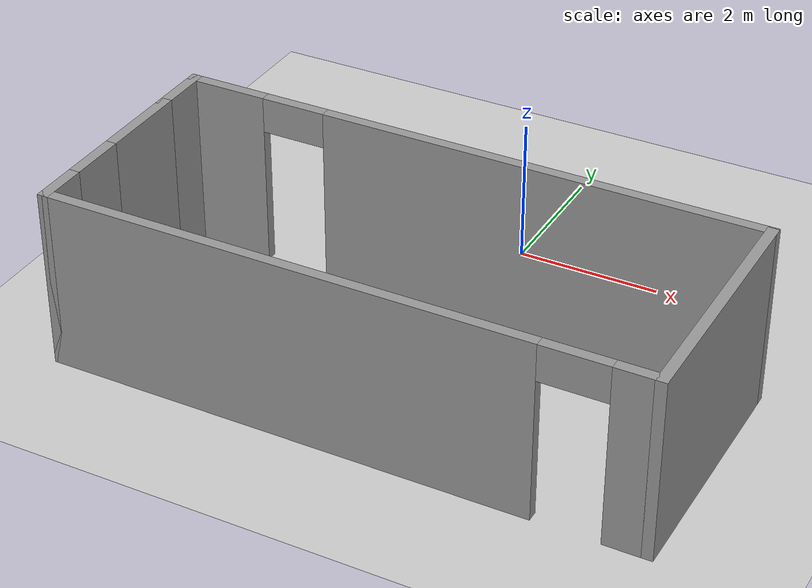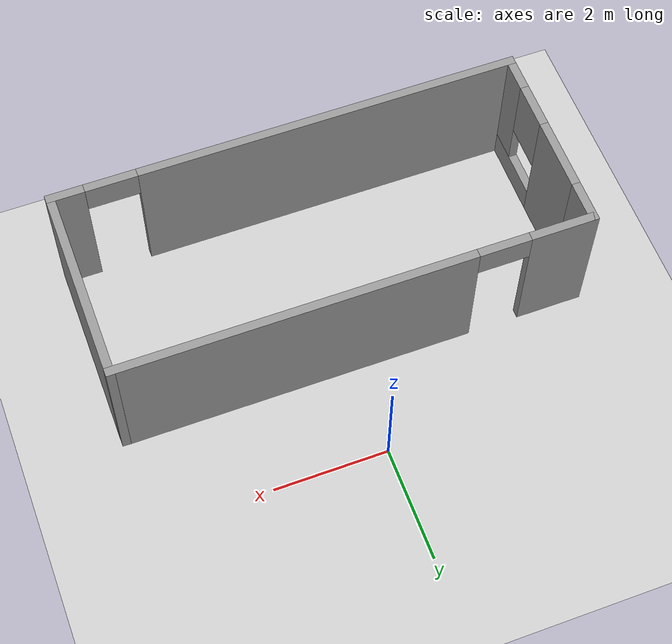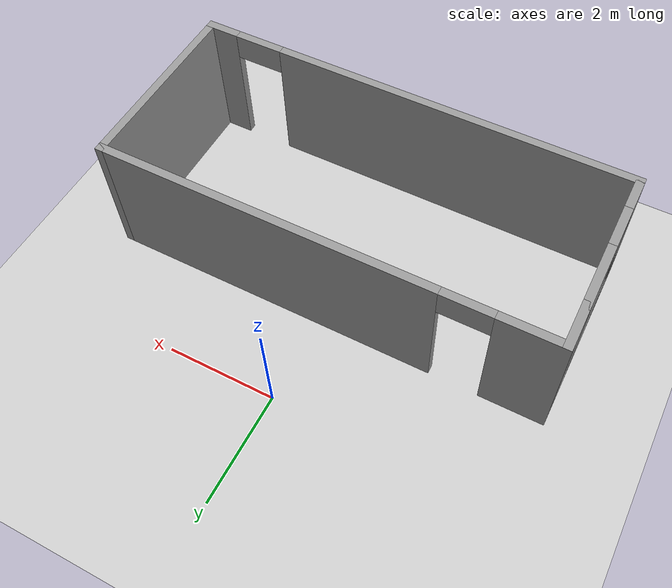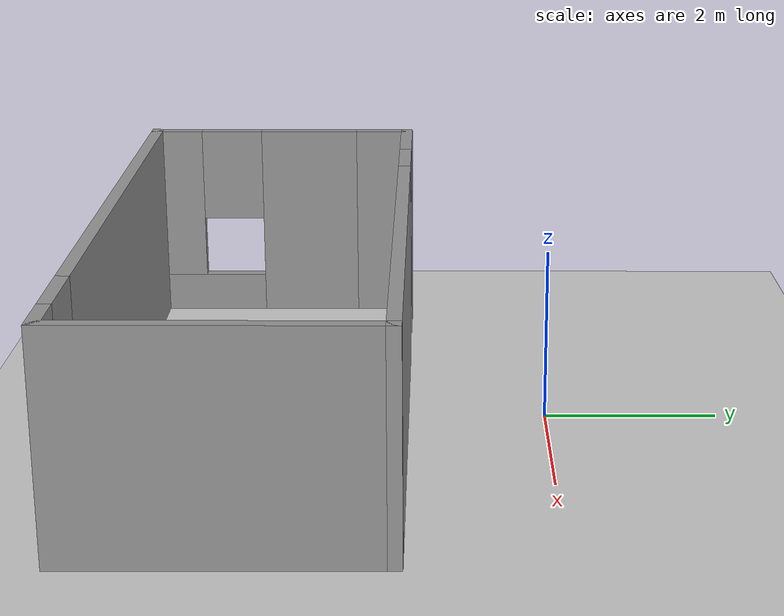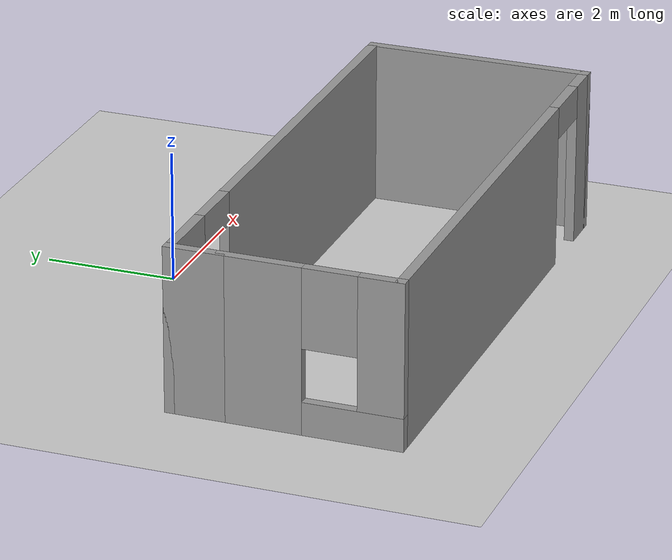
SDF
<sdf version="1.7">
 <world name="default">
  <light name="sun" type="directional">
   <pose>0 0 10 0 -0 0</pose>
   <diffuse>0.8 0.8 0.8 1</diffuse>
   <specular>0.2 0.2 0.2 1</specular>
   <attenuation>
    <range>1000</range>
    <constant>0.9</constant>
    <linear>0.01</linear>
    <quadratic>0.001</quadratic>
   </attenuation>
   <direction>-0.5 0.1 -0.9</direction>
   <spot><inner_angle>0</inner_angle><outer_angle>0</outer_angle><falloff>0</falloff></spot>
  </light>
  <model name="ground_plane">
   <static>1</static>
   <link name="link">
    <collision name="collision">
     <geometry><plane><normal>0 0 1</normal><size>100 100</size></plane></geometry>
     <surface>
      <contact><collide_bitmask>65535</collide_bitmask></contact>
      <friction><ode><mu>100</mu><mu2>50</mu2></ode></friction>
     </surface>
    </collision>
    <visual name="visual">
     <cast_shadows>0</cast_shadows>
     <geometry><plane><normal>0 0 1</normal><size>100 100</size></plane></geometry>
     <material>
      <script><uri>file://media/materials/scripts/gazebo.material</uri><name>Gazebo/Grey</name></script>
     </material>
    </visual>
   </link>
  </model>
  <gravity>0 0 -9.8</gravity>
  <magnetic_field>6e-06 2.3e-05 -4.2e-05</magnetic_field>
  <atmosphere type="adiabatic"/>
  <physics type="ode">
   <max_step_size>0.001</max_step_size>
   <real_time_factor>1</real_time_factor>
   <real_time_update_rate>1000</real_time_update_rate>
  </physics>
  <scene><ambient>0.4 0.4 0.4 1</ambient><background>0.7 0.7 0.7 1</background><shadows>1</shadows></scene>
  <audio><device>default</device></audio>
  <spherical_coordinates>
   <surface_model>EARTH_WGS84</surface_model>
   <latitude_deg>0</latitude_deg>
   <longitude_deg>0</longitude_deg>
   <elevation>0</elevation>
   <heading_deg>0</heading_deg>
  </spherical_coordinates>
  <model name="test_world">
   <pose>-0.05 -2.5475 0 0 -0 0</pose>
   <link name="Wall_0">
    <pose>-4.05 -1.1725 0 0 -0 -1.5708</pose>
    <visual name="Wall_0_Visual_0">
     <pose>-0.7375 0 1.25 0 -0 0</pose>
     <geometry><box><size>1.275 0.15 2.5</size></box></geometry>
     <material>
      <script><uri>file://media/materials/scripts/gazebo.material</uri><name>Gazebo/Grey</name></script>
      <ambient>1 1 1 1</ambient>
     </material>
     <meta><layer>0</layer></meta>
    </visual>
    <collision name="Wall_0_Collision_0">
     <geometry><box><size>1.275 0.15 2.5</size></box></geometry>
     <pose>-0.7375 0 1.25 0 -0 0</pose>
    </collision>
    <visual name="Wall_0_Visual_1">
     <pose>0.6375 0 0.25 0 -0 0</pose>
     <geometry><box><size>1.475 0.15 0.5</size></box></geometry>
     <material>
      <script><uri>file://media/materials/scripts/gazebo.material</uri><name>Gazebo/Grey</name></script>
      <ambient>1 1 1 1</ambient>
     </material>
     <meta><layer>0</layer></meta>
    </visual>
    <collision name="Wall_0_Collision_1">
     <geometry><box><size>1.475 0.15 0.5</size></box></geometry>
     <pose>0.6375 0 0.25 0 -0 0</pose>
    </collision>
    <visual name="Wall_0_Visual_2">
     <pose>1.0375 0 1.5 0 -0 0</pose>
     <geometry><box><size>0.675 0.15 2</size></box></geometry>
     <material>
      <script><uri>file://media/materials/scripts/gazebo.material</uri><name>Gazebo/Grey</name></script>
      <ambient>1 1 1 1</ambient>
     </material>
     <meta><layer>0</layer></meta>
    </visual>
    <collision name="Wall_0_Collision_2">
     <geometry><box><size>0.675 0.15 2</size></box></geometry>
     <pose>1.0375 0 1.5 0 -0 0</pose>
    </collision>
    <visual name="Wall_0_Visual_3">
     <pose>0.3 0 1.9 0 -0 0</pose>
     <geometry><box><size>0.8 0.15 1.2</size></box></geometry>
     <material>
      <script><uri>file://media/materials/scripts/gazebo.material</uri><name>Gazebo/Grey</name></script>
      <ambient>1 1 1 1</ambient>
     </material>
     <meta><layer>0</layer></meta>
    </visual>
    <collision name="Wall_0_Collision_3">
     <geometry><box><size>0.8 0.15 1.2</size></box></geometry>
     <pose>0.3 0 1.9 0 -0 0</pose>
    </collision>
   </link>
   <link name="Wall_1">
    <pose>-0 -2.4725 0 0 -0 0</pose>
    <visual name="Wall_1_Visual_0">
     <pose>-0.7725 0 1.25 0 -0 0</pose>
     <geometry><box><size>6.705 0.15 2.5</size></box></geometry>
     <material>
      <script><uri>file://media/materials/scripts/gazebo.material</uri><name>Gazebo/Grey</name></script>
      <ambient>1 1 1 1</ambient>
     </material>
     <meta><layer>0</layer></meta>
    </visual>
    <collision name="Wall_1_Collision_0">
     <geometry><box><size>6.705 0.15 2.5</size></box></geometry>
     <pose>-0.7725 0 1.25 0 -0 0</pose>
    </collision>
    <visual name="Wall_1_Visual_1">
     <pose>3.8025 0 1.25 0 -0 0</pose>
     <geometry><box><size>0.645 0.15 2.5</size></box></geometry>
     <material>
      <script><uri>file://media/materials/scripts/gazebo.material</uri><name>Gazebo/Grey</name></script>
      <ambient>1 1 1 1</ambient>
     </material>
     <meta><layer>0</layer></meta>
    </visual>
    <collision name="Wall_1_Collision_1">
     <geometry><box><size>0.645 0.15 2.5</size></box></geometry>
     <pose>3.8025 0 1.25 0 -0 0</pose>
    </collision>
    <visual name="Wall_1_Visual_2">
     <pose>3.03 0 2.25 0 -0 0</pose>
     <geometry><box><size>0.9 0.15 0.5</size></box></geometry>
     <material>
      <script><uri>file://media/materials/scripts/gazebo.material</uri><name>Gazebo/Grey</name></script>
      <ambient>1 1 1 1</ambient>
     </material>
     <meta><layer>0</layer></meta>
    </visual>
    <collision name="Wall_1_Collision_2">
     <geometry><box><size>0.9 0.15 0.5</size></box></geometry>
     <pose>3.03 0 2.25 0 -0 0</pose>
    </collision>
   </link>
   <link name="Wall_2">
    <collision name="Wall_2_Collision">
     <geometry><box><size>3.5 0.15 2.5</size></box></geometry>
     <pose>0 0 1.25 0 -0 0</pose>
    </collision>
    <visual name="Wall_2_Visual">
     <pose>0 0 1.25 0 -0 0</pose>
     <geometry><box><size>3.5 0.15 2.5</size></box></geometry>
     <material>
      <script><uri>file://media/materials/scripts/gazebo.material</uri><name>Gazebo/Grey</name></script>
      <ambient>1 1 1 1</ambient>
     </material>
     <meta><layer>0</layer></meta>
    </visual>
    <pose>4.05 -0.7975 0 0 -0 1.5708</pose>
   </link>
   <link name="Wall_3">
    <pose>-0 0.8775 0 0 -0 3.14159</pose>
    <visual name="Wall_3_Visual_0">
     <pose>-1.0375 0 1.25 0 -0 0</pose>
     <geometry><box><size>6.175 0.15 2.5</size></box></geometry>
     <material>
      <script><uri>file://media/materials/scripts/gazebo.material</uri><name>Gazebo/Grey</name></script>
      <ambient>1 1 1 1</ambient>
     </material>
     <meta><layer>0</layer></meta>
    </visual>
    <collision name="Wall_3_Collision_0">
     <geometry><box><size>6.175 0.15 2.5</size></box></geometry>
     <pose>-1.0375 0 1.25 0 -0 0</pose>
    </collision>
    <visual name="Wall_3_Visual_1">
     <pose>3.5375 0 1.25 0 -0 0</pose>
     <geometry><box><size>1.175 0.15 2.5</size></box></geometry>
     <material>
      <script><uri>file://media/materials/scripts/gazebo.material</uri><name>Gazebo/Grey</name></script>
      <ambient>1 1 1 1</ambient>
     </material>
     <meta><layer>0</layer></meta>
    </visual>
    <collision name="Wall_3_Collision_1">
     <geometry><box><size>1.175 0.15 2.5</size></box></geometry>
     <pose>3.5375 0 1.25 0 -0 0</pose>
    </collision>
    <visual name="Wall_3_Visual_2">
     <pose>2.5 0 2.25 0 -0 0</pose>
     <geometry><box><size>0.9 0.15 0.5</size></box></geometry>
     <material>
      <script><uri>file://media/materials/scripts/gazebo.material</uri><name>Gazebo/Grey</name></script>
      <ambient>1 1 1 1</ambient>
     </material>
     <meta><layer>0</layer></meta>
    </visual>
    <collision name="Wall_3_Collision_2">
     <geometry><box><size>0.9 0.15 0.5</size></box></geometry>
     <pose>2.5 0 2.25 0 -0 0</pose>
    </collision>
   </link>
   <link name="Wall_4">
    <collision name="Wall_4_Collision">
     <geometry><box><size>0.9 0.15 2.5</size></box></geometry>
     <pose>0 0 1.25 0 -0 0</pose>
    </collision>
    <visual name="Wall_4_Visual">
     <pose>0 0 1.25 0 -0 0</pose>
     <geometry><box><size>0.9 0.15 2.5</size></box></geometry>
     <material>
      <script><uri>file://media/materials/scripts/gazebo.material</uri><name>Gazebo/Grey</name></script>
      <ambient>1 1 1 1</ambient>
     </material>
     <meta><layer>0</layer></meta>
    </visual>
    <pose>-4.05 0.5025 0 0 -0 -1.5708</pose>
   </link>
   <static>1</static>
  </model>
 </world>
</sdf>
